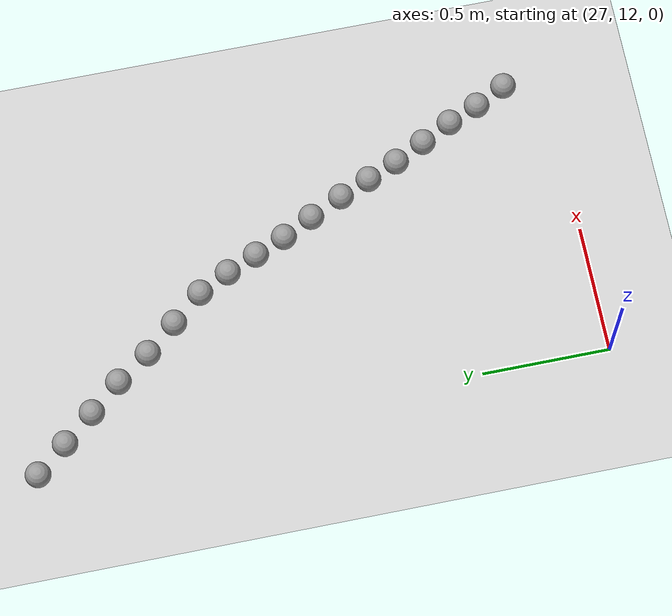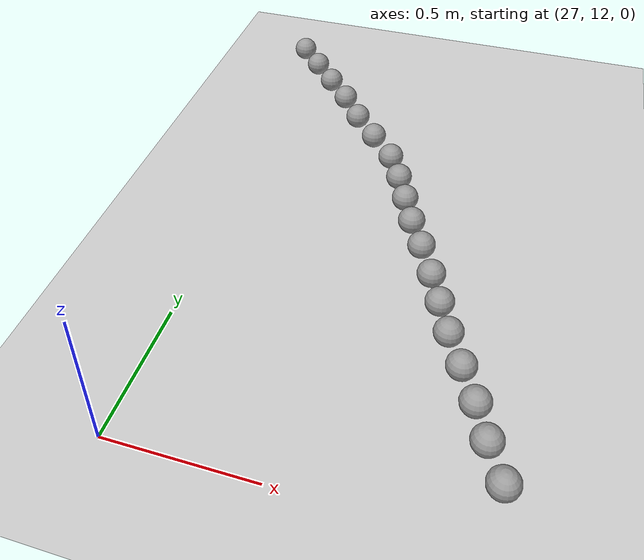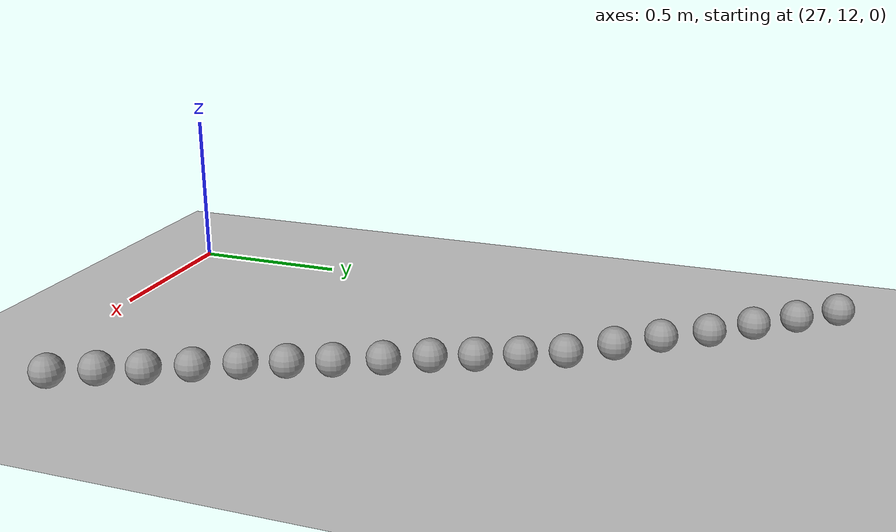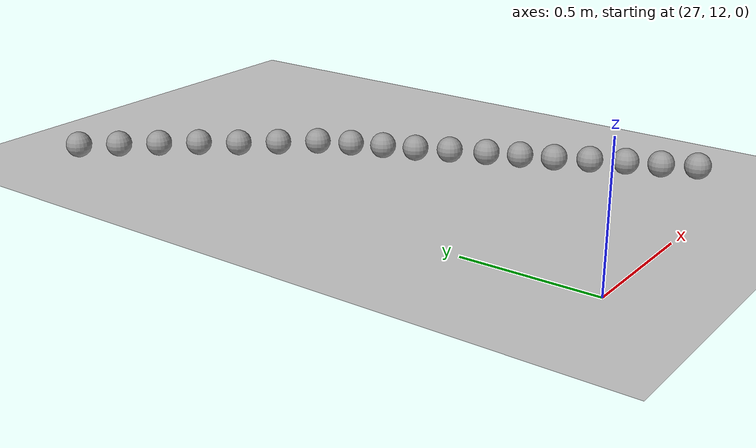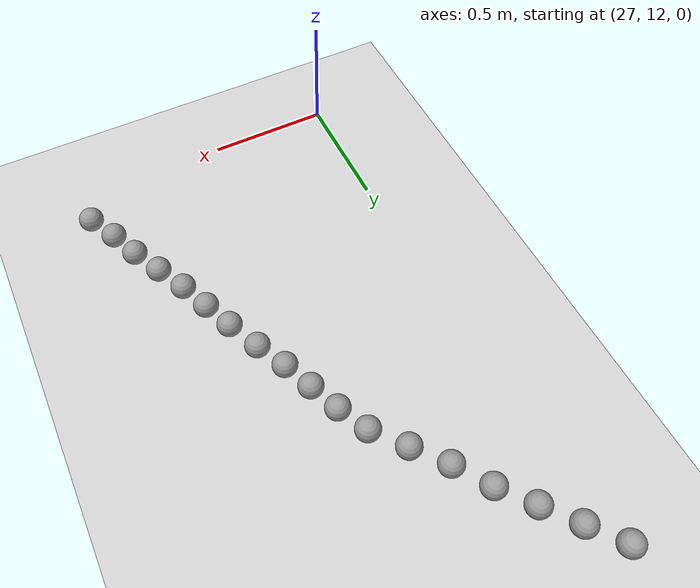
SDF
<sdf version="1.6">
 <world name="default">
  <model name="ground_plane">
   <static>1</static>
   <link name="link">
    <collision name="collision">
     <geometry><plane><normal>0 0 1</normal><size>100 100</size></plane></geometry>
     <surface><friction><ode><mu>100</mu><mu2>50</mu2></ode></friction></surface>
    </collision>
    <visual name="visual">
     <cast_shadows>0</cast_shadows>
     <geometry><plane><normal>0 0 1</normal><size>100 100</size></plane></geometry>
     <material>
      <script><uri>file://media/materials/scripts/gazebo.material</uri><name>Gazebo/Grey</name></script>
     </material>
    </visual>
   </link>
  </model>
  <model name="unit_sphere_0_224">
   <pose>26.930000 14.230000 0.050000 0 -0 0</pose>
   <link name="link">
    <inertial>
     <mass>1</mass>
     <inertia><ixx>0.1</ixx><ixy>0</ixy><ixz>0</ixz><iyy>0.1</iyy><iyz>0</iyz><izz>0.1</izz></inertia>
    </inertial>
    <collision name="collision"><geometry><sphere><radius>0.050000</radius></sphere></geometry></collision>
    <visual name="visual">
     <geometry><sphere><radius>0.050000</radius></sphere></geometry>
     <material>
      <script><name>Gazebo/Grey</name><uri>file://media/materials/scripts/gazebo.material</uri></script>
     </material>
    </visual>
   </link>
  </model>
  <model name="unit_sphere_0_225">
   <pose>27.030000 14.110000 0.050000 0 -0 0</pose>
   <link name="link">
    <inertial>
     <mass>1</mass>
     <inertia><ixx>0.1</ixx><ixy>0</ixy><ixz>0</ixz><iyy>0.1</iyy><iyz>0</iyz><izz>0.1</izz></inertia>
    </inertial>
    <collision name="collision"><geometry><sphere><radius>0.050000</radius></sphere></geometry></collision>
    <visual name="visual">
     <geometry><sphere><radius>0.050000</radius></sphere></geometry>
     <material>
      <script><name>Gazebo/Grey</name><uri>file://media/materials/scripts/gazebo.material</uri></script>
     </material>
    </visual>
   </link>
  </model>
  <model name="unit_sphere_0_226">
   <pose>27.130000 13.990000 0.050000 0 -0 0</pose>
   <link name="link">
    <inertial>
     <mass>1</mass>
     <inertia><ixx>0.1</ixx><ixy>0</ixy><ixz>0</ixz><iyy>0.1</iyy><iyz>0</iyz><izz>0.1</izz></inertia>
    </inertial>
    <collision name="collision"><geometry><sphere><radius>0.050000</radius></sphere></geometry></collision>
    <visual name="visual">
     <geometry><sphere><radius>0.050000</radius></sphere></geometry>
     <material>
      <script><name>Gazebo/Grey</name><uri>file://media/materials/scripts/gazebo.material</uri></script>
     </material>
    </visual>
   </link>
  </model>
  <model name="unit_sphere_0_227">
   <pose>27.230000 13.870000 0.050000 0 -0 0</pose>
   <link name="link">
    <inertial>
     <mass>1</mass>
     <inertia><ixx>0.1</ixx><ixy>0</ixy><ixz>0</ixz><iyy>0.1</iyy><iyz>0</iyz><izz>0.1</izz></inertia>
    </inertial>
    <collision name="collision"><geometry><sphere><radius>0.050000</radius></sphere></geometry></collision>
    <visual name="visual">
     <geometry><sphere><radius>0.050000</radius></sphere></geometry>
     <material>
      <script><name>Gazebo/Grey</name><uri>file://media/materials/scripts/gazebo.material</uri></script>
     </material>
    </visual>
   </link>
  </model>
  <model name="unit_sphere_0_228">
   <pose>27.320000 13.740000 0.050000 0 -0 0</pose>
   <link name="link">
    <inertial>
     <mass>1</mass>
     <inertia><ixx>0.1</ixx><ixy>0</ixy><ixz>0</ixz><iyy>0.1</iyy><iyz>0</iyz><izz>0.1</izz></inertia>
    </inertial>
    <collision name="collision"><geometry><sphere><radius>0.050000</radius></sphere></geometry></collision>
    <visual name="visual">
     <geometry><sphere><radius>0.050000</radius></sphere></geometry>
     <material>
      <script><name>Gazebo/Grey</name><uri>file://media/materials/scripts/gazebo.material</uri></script>
     </material>
    </visual>
   </link>
  </model>
  <model name="unit_sphere_0_229">
   <pose>27.420000 13.620000 0.050000 0 -0 0</pose>
   <link name="link">
    <inertial>
     <mass>1</mass>
     <inertia><ixx>0.1</ixx><ixy>0</ixy><ixz>0</ixz><iyy>0.1</iyy><iyz>0</iyz><izz>0.1</izz></inertia>
    </inertial>
    <collision name="collision"><geometry><sphere><radius>0.050000</radius></sphere></geometry></collision>
    <visual name="visual">
     <geometry><sphere><radius>0.050000</radius></sphere></geometry>
     <material>
      <script><name>Gazebo/Grey</name><uri>file://media/materials/scripts/gazebo.material</uri></script>
     </material>
    </visual>
   </link>
  </model>
  <model name="unit_sphere_0_230">
   <pose>27.520000 13.500000 0.050000 0 -0 0</pose>
   <link name="link">
    <inertial>
     <mass>1</mass>
     <inertia><ixx>0.1</ixx><ixy>0</ixy><ixz>0</ixz><iyy>0.1</iyy><iyz>0</iyz><izz>0.1</izz></inertia>
    </inertial>
    <collision name="collision"><geometry><sphere><radius>0.050000</radius></sphere></geometry></collision>
    <visual name="visual">
     <geometry><sphere><radius>0.050000</radius></sphere></geometry>
     <material>
      <script><name>Gazebo/Grey</name><uri>file://media/materials/scripts/gazebo.material</uri></script>
     </material>
    </visual>
   </link>
  </model>
  <model name="unit_sphere_0_231">
   <pose>27.580000 13.380000 0.050000 0 -0 0</pose>
   <link name="link">
    <inertial>
     <mass>1</mass>
     <inertia><ixx>0.1</ixx><ixy>0</ixy><ixz>0</ixz><iyy>0.1</iyy><iyz>0</iyz><izz>0.1</izz></inertia>
    </inertial>
    <collision name="collision"><geometry><sphere><radius>0.050000</radius></sphere></geometry></collision>
    <visual name="visual">
     <geometry><sphere><radius>0.050000</radius></sphere></geometry>
     <material>
      <script><name>Gazebo/Grey</name><uri>file://media/materials/scripts/gazebo.material</uri></script>
     </material>
    </visual>
   </link>
  </model>
  <model name="unit_sphere_0_232">
   <pose>27.630000 13.260000 0.050000 0 -0 0</pose>
   <link name="link">
    <inertial>
     <mass>1</mass>
     <inertia><ixx>0.1</ixx><ixy>0</ixy><ixz>0</ixz><iyy>0.1</iyy><iyz>0</iyz><izz>0.1</izz></inertia>
    </inertial>
    <collision name="collision"><geometry><sphere><radius>0.050000</radius></sphere></geometry></collision>
    <visual name="visual">
     <geometry><sphere><radius>0.050000</radius></sphere></geometry>
     <material>
      <script><name>Gazebo/Grey</name><uri>file://media/materials/scripts/gazebo.material</uri></script>
     </material>
    </visual>
   </link>
  </model>
  <model name="unit_sphere_0_233">
   <pose>27.680000 13.140000 0.050000 0 -0 0</pose>
   <link name="link">
    <inertial>
     <mass>1</mass>
     <inertia><ixx>0.1</ixx><ixy>0</ixy><ixz>0</ixz><iyy>0.1</iyy><iyz>0</iyz><izz>0.1</izz></inertia>
    </inertial>
    <collision name="collision"><geometry><sphere><radius>0.050000</radius></sphere></geometry></collision>
    <visual name="visual">
     <geometry><sphere><radius>0.050000</radius></sphere></geometry>
     <material>
      <script><name>Gazebo/Grey</name><uri>file://media/materials/scripts/gazebo.material</uri></script>
     </material>
    </visual>
   </link>
  </model>
  <model name="unit_sphere_0_234">
   <pose>27.740000 13.020000 0.050000 0 -0 0</pose>
   <link name="link">
    <inertial>
     <mass>1</mass>
     <inertia><ixx>0.1</ixx><ixy>0</ixy><ixz>0</ixz><iyy>0.1</iyy><iyz>0</iyz><izz>0.1</izz></inertia>
    </inertial>
    <collision name="collision"><geometry><sphere><radius>0.050000</radius></sphere></geometry></collision>
    <visual name="visual">
     <geometry><sphere><radius>0.050000</radius></sphere></geometry>
     <material>
      <script><name>Gazebo/Grey</name><uri>file://media/materials/scripts/gazebo.material</uri></script>
     </material>
    </visual>
   </link>
  </model>
  <model name="unit_sphere_0_235">
   <pose>27.800000 12.890000 0.050000 0 -0 0</pose>
   <link name="link">
    <inertial>
     <mass>1</mass>
     <inertia><ixx>0.1</ixx><ixy>0</ixy><ixz>0</ixz><iyy>0.1</iyy><iyz>0</iyz><izz>0.1</izz></inertia>
    </inertial>
    <collision name="collision"><geometry><sphere><radius>0.050000</radius></sphere></geometry></collision>
    <visual name="visual">
     <geometry><sphere><radius>0.050000</radius></sphere></geometry>
     <material>
      <script><name>Gazebo/Grey</name><uri>file://media/materials/scripts/gazebo.material</uri></script>
     </material>
    </visual>
   </link>
  </model>
  <model name="unit_sphere_0_236">
   <pose>27.850000 12.770000 0.050000 0 -0 0</pose>
   <link name="link">
    <inertial>
     <mass>1</mass>
     <inertia><ixx>0.1</ixx><ixy>0</ixy><ixz>0</ixz><iyy>0.1</iyy><iyz>0</iyz><izz>0.1</izz></inertia>
    </inertial>
    <collision name="collision"><geometry><sphere><radius>0.050000</radius></sphere></geometry></collision>
    <visual name="visual">
     <geometry><sphere><radius>0.050000</radius></sphere></geometry>
     <material>
      <script><name>Gazebo/Grey</name><uri>file://media/materials/scripts/gazebo.material</uri></script>
     </material>
    </visual>
   </link>
  </model>
  <model name="unit_sphere_0_237">
   <pose>27.900000 12.650000 0.050000 0 -0 0</pose>
   <link name="link">
    <inertial>
     <mass>1</mass>
     <inertia><ixx>0.1</ixx><ixy>0</ixy><ixz>0</ixz><iyy>0.1</iyy><iyz>0</iyz><izz>0.1</izz></inertia>
    </inertial>
    <collision name="collision"><geometry><sphere><radius>0.050000</radius></sphere></geometry></collision>
    <visual name="visual">
     <geometry><sphere><radius>0.050000</radius></sphere></geometry>
     <material>
      <script><name>Gazebo/Grey</name><uri>file://media/materials/scripts/gazebo.material</uri></script>
     </material>
    </visual>
   </link>
  </model>
  <model name="unit_sphere_0_238">
   <pose>27.960000 12.530000 0.050000 0 -0 0</pose>
   <link name="link">
    <inertial>
     <mass>1</mass>
     <inertia><ixx>0.1</ixx><ixy>0</ixy><ixz>0</ixz><iyy>0.1</iyy><iyz>0</iyz><izz>0.1</izz></inertia>
    </inertial>
    <collision name="collision"><geometry><sphere><radius>0.050000</radius></sphere></geometry></collision>
    <visual name="visual">
     <geometry><sphere><radius>0.050000</radius></sphere></geometry>
     <material>
      <script><name>Gazebo/Grey</name><uri>file://media/materials/scripts/gazebo.material</uri></script>
     </material>
    </visual>
   </link>
  </model>
  <model name="unit_sphere_0_239">
   <pose>28.020000 12.410000 0.050000 0 -0 0</pose>
   <link name="link">
    <inertial>
     <mass>1</mass>
     <inertia><ixx>0.1</ixx><ixy>0</ixy><ixz>0</ixz><iyy>0.1</iyy><iyz>0</iyz><izz>0.1</izz></inertia>
    </inertial>
    <collision name="collision"><geometry><sphere><radius>0.050000</radius></sphere></geometry></collision>
    <visual name="visual">
     <geometry><sphere><radius>0.050000</radius></sphere></geometry>
     <material>
      <script><name>Gazebo/Grey</name><uri>file://media/materials/scripts/gazebo.material</uri></script>
     </material>
    </visual>
   </link>
  </model>
  <model name="unit_sphere_0_240">
   <pose>28.070000 12.290000 0.050000 0 -0 0</pose>
   <link name="link">
    <inertial>
     <mass>1</mass>
     <inertia><ixx>0.1</ixx><ixy>0</ixy><ixz>0</ixz><iyy>0.1</iyy><iyz>0</iyz><izz>0.1</izz></inertia>
    </inertial>
    <collision name="collision"><geometry><sphere><radius>0.050000</radius></sphere></geometry></collision>
    <visual name="visual">
     <geometry><sphere><radius>0.050000</radius></sphere></geometry>
     <material>
      <script><name>Gazebo/Grey</name><uri>file://media/materials/scripts/gazebo.material</uri></script>
     </material>
    </visual>
   </link>
  </model>
  <model name="unit_sphere_0_241">
   <pose>28.130000 12.170000 0.050000 0 -0 0</pose>
   <link name="link">
    <inertial>
     <mass>1</mass>
     <inertia><ixx>0.1</ixx><ixy>0</ixy><ixz>0</ixz><iyy>0.1</iyy><iyz>0</iyz><izz>0.1</izz></inertia>
    </inertial>
    <collision name="collision"><geometry><sphere><radius>0.050000</radius></sphere></geometry></collision>
    <visual name="visual">
     <geometry><sphere><radius>0.050000</radius></sphere></geometry>
     <material>
      <script><name>Gazebo/Grey</name><uri>file://media/materials/scripts/gazebo.material</uri></script>
     </material>
    </visual>
   </link>
  </model>
 </world>
</sdf>
